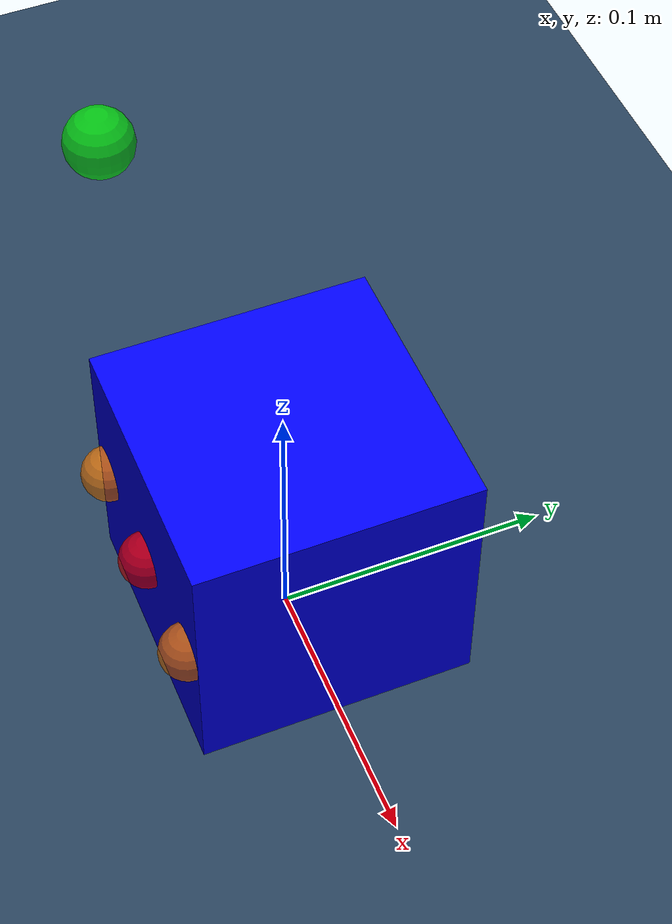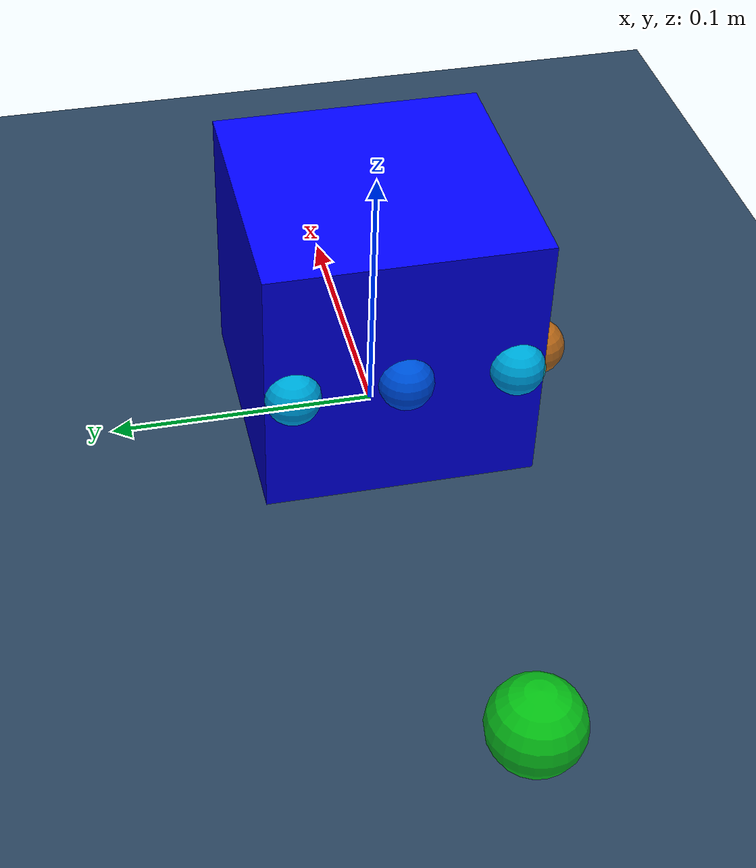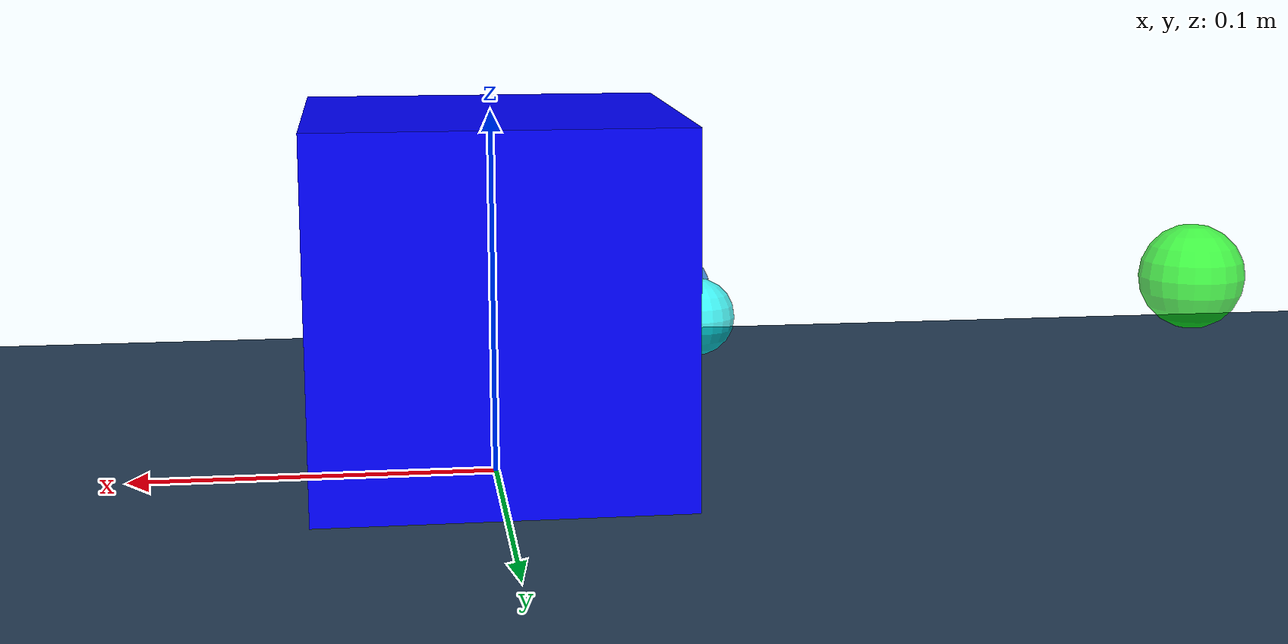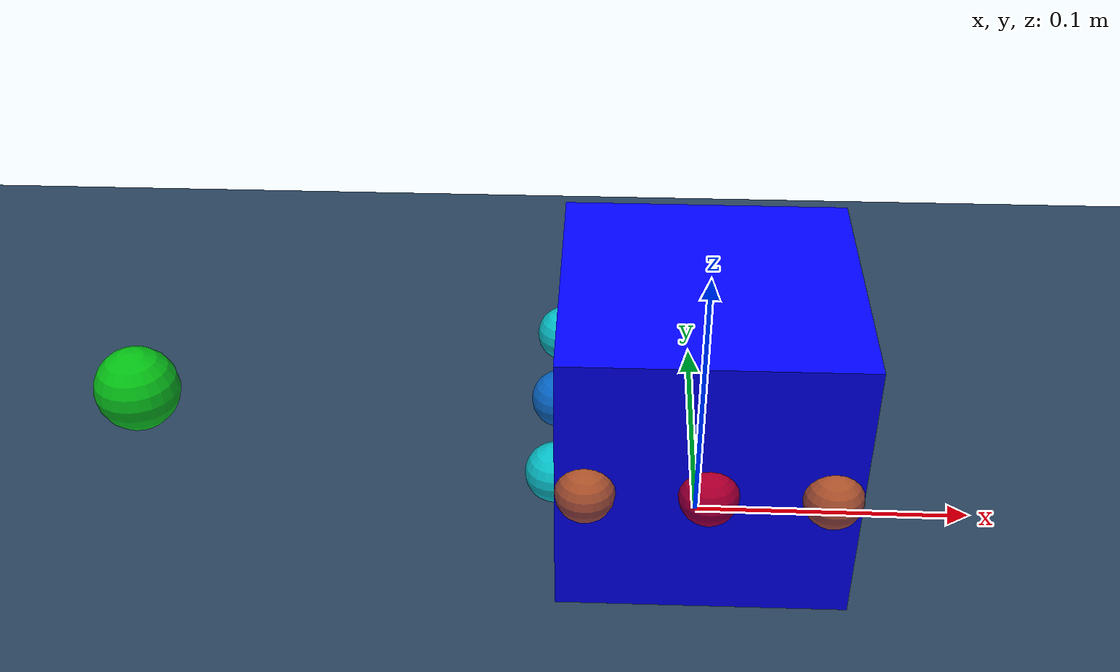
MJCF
<mujoco model="cube_push_textured">
  <option timestep="0.002" integrator="RK4"/>

  <asset>
    <texture name="grid" type="2d" builtin="checker" rgb1=".1 .2 .3" rgb2=".2 .3 .4" width="300" height="300" mark="edge" markrgb=".8 .8 .8"/>
    <material name="gridmat" texture="grid" texrepeat="1 1" texuniform="true" reflectance=".2"/>
  </asset>

  <worldbody>
    <light diffuse=".5 .5 .5" pos="0 0 3" dir="0 0 -1"/>
    <geom name="floor" type="plane" size="2 2 0.1" material="gridmat" friction="1.0 0.005 0.0001"/>

    <body name="cube" pos="0 0 0.05">
      <joint name="cube_joint" type="free" limited="false"/>
      <geom name="cube_geom" type="box" size="0.05 0.05 0.05" mass="0.1" rgba="0 0 1 1" friction="0.3 0.005 0.0001"/>

      <site name="site_back_center" pos=" 0.00 -0.05 0.00" size="0.01" rgba="1 0 0 0.7"/>
      <site name="site_back_left"   pos=" 0.04 -0.05 0.00" size="0.01" rgba="1 0.5 0 0.7"/>
      <site name="site_back_right"  pos="-0.04 -0.05 0.00" size="0.01" rgba="1 0.5 0 0.7"/>
      <site name="site_left_center" pos="-0.05  0.00 0.00" size="0.01" rgba="0 0.5 1 0.7"/>
       <site name="site_left_up"     pos="-0.05  0.04 0.00" size="0.01" rgba="0 1.0 1 0.7"/>
      <site name="site_left_down"   pos="-0.05 -0.04 0.00" size="0.01" rgba="0 1.0 1 0.7"/>

      </body>

    <body name="pusher_mocap" mocap="true" pos="-0.2 0.0 0.05">
       <geom name="pusher_geom" type="sphere" size="0.015" rgba="0 1 0 0.7" contype="1" conaffinity="1"/>
    </body>

  </worldbody>

  <contact>
    </contact>

</mujoco>
